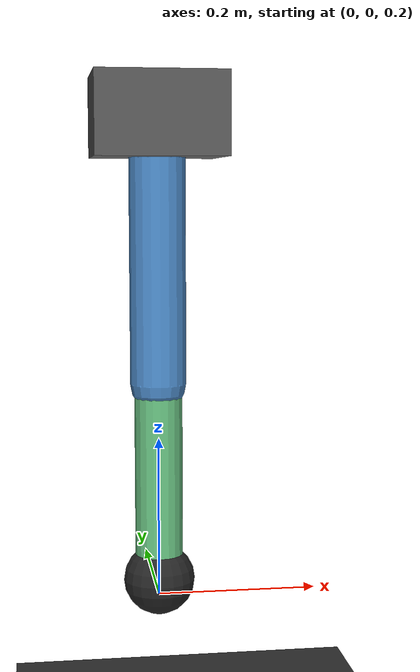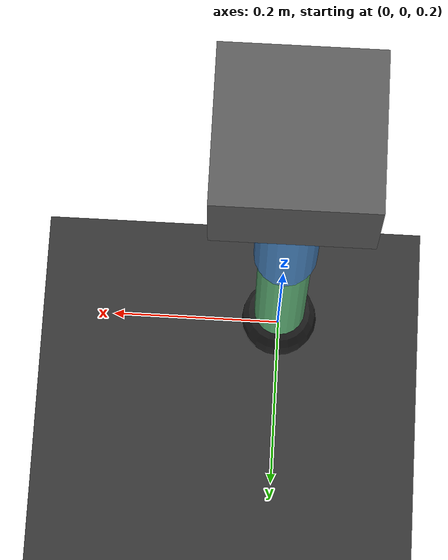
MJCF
<mujoco model="open_meriforma_virtual_unit_2dof">
  <compiler angle="degree" autolimits="true"/>
  <option timestep="0.002" gravity="0 0 -9.81"/>

  <default>
    <joint damping="0.2" armature="0.01"/>
    <geom density="500" friction="0.8 0.1 0.01"/>
  </default>

  <worldbody>
    <light pos="0 0 2" dir="0 0 -1" diffuse="1 1 1"/>
    <geom name="floor" type="plane" size="2 2 0.1" rgba="0.2 0.2 0.2 1"/>

    <body name="base" pos="0 0 0.8">
      <geom type="box" size="0.08 0.08 0.05" rgba="0.35 0.35 0.35 1"/>

      <body name="link_a" pos="0 0 -0.05">
        <joint name="joint_a" type="hinge" axis="0 1 0" range="-80 80"/>
        <geom type="capsule" fromto="0 0 0 0 0 -0.28" size="0.035" rgba="0.3 0.55 0.8 1"/>

        <body name="link_b" pos="0 0 -0.28">
          <joint name="joint_b" type="hinge" axis="0 1 0" range="-100 100"/>
          <geom type="capsule" fromto="0 0 0 0 0 -0.24" size="0.03" rgba="0.4 0.75 0.5 1"/>
          <site name="indicator_light" pos="0 0 -0.25" type="sphere" size="0.045" rgba="0.15 0.15 0.15 1"/>
        </body>
      </body>
    </body>
  </worldbody>

  <actuator>
    <position name="actuator_a" joint="joint_a" kp="24" ctrlrange="-1.3962634 1.3962634"/>
    <position name="actuator_b" joint="joint_b" kp="20" ctrlrange="-1.7453293 1.7453293"/>
  </actuator>
</mujoco>
